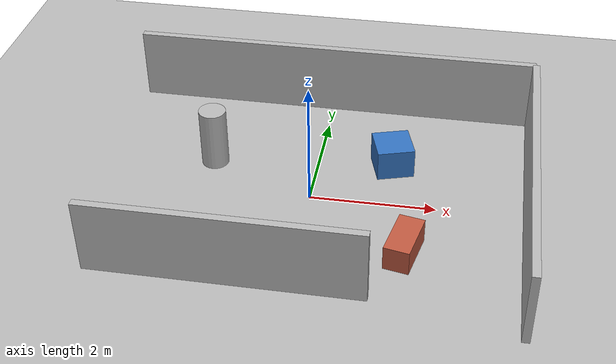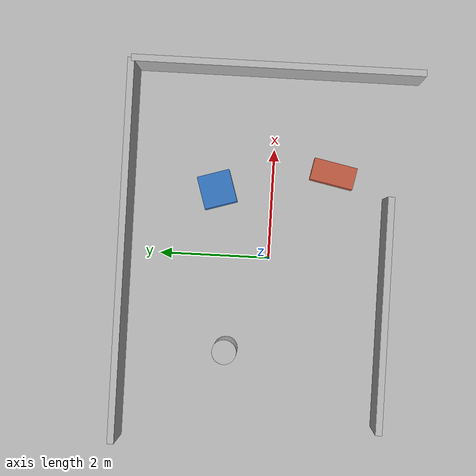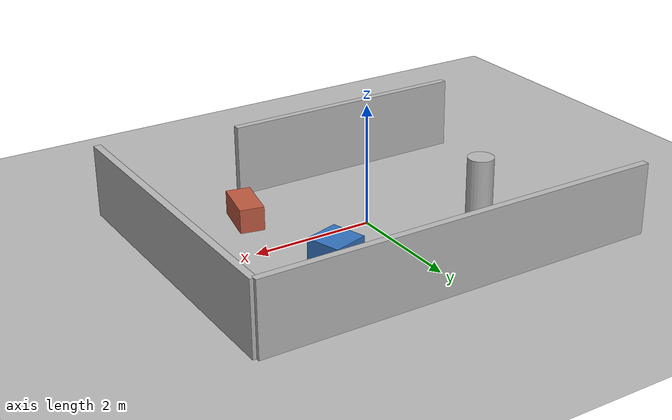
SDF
<?xml version="1.0"?>
<sdf version="1.6">
  <world name="g1_slam_room">
    <plugin name="gazebo_ros_init" filename="libgazebo_ros_init.so"/>
    <plugin name="gazebo_ros_factory" filename="libgazebo_ros_factory.so"/>

    <gravity>0 0 -9.8</gravity>

    <include>
      <uri>model://sun</uri>
    </include>

    <model name="ground_plane">
      <static>true</static>
      <link name="link">
        <collision name="collision">
          <geometry>
            <plane>
              <normal>0 0 1</normal>
              <size>12 12</size>
            </plane>
          </geometry>
        </collision>
        <visual name="visual">
          <geometry>
            <plane>
              <normal>0 0 1</normal>
              <size>12 12</size>
            </plane>
          </geometry>
          <material>
            <ambient>0.72 0.72 0.72 1</ambient>
            <diffuse>0.72 0.72 0.72 1</diffuse>
          </material>
        </visual>
      </link>
    </model>

    <model name="front_wall">
      <static>true</static>
      <pose>3.4 0 0.6 0 0 0</pose>
      <link name="link">
        <collision name="collision"><geometry><box><size>0.12 5.2 1.2</size></box></geometry></collision>
        <visual name="visual"><geometry><box><size>0.12 5.2 1.2</size></box></geometry></visual>
      </link>
    </model>

    <model name="left_wall">
      <static>true</static>
      <pose>0 2.6 0.6 0 0 0</pose>
      <link name="link">
        <collision name="collision"><geometry><box><size>6.8 0.12 1.2</size></box></geometry></collision>
        <visual name="visual"><geometry><box><size>6.8 0.12 1.2</size></box></geometry></visual>
      </link>
    </model>

    <model name="right_wall_short">
      <static>true</static>
      <pose>-0.9 -2.1 0.6 0 0 0</pose>
      <link name="link">
        <collision name="collision"><geometry><box><size>4.2 0.12 1.2</size></box></geometry></collision>
        <visual name="visual"><geometry><box><size>4.2 0.12 1.2</size></box></geometry></visual>
      </link>
    </model>

    <model name="left_box">
      <static>true</static>
      <pose>1.2 1.0 0.25 0 0 0.3</pose>
      <link name="link">
        <collision name="collision"><geometry><box><size>0.6 0.6 0.5</size></box></geometry></collision>
        <visual name="visual">
          <geometry><box><size>0.6 0.6 0.5</size></box></geometry>
          <material><ambient>0.2 0.45 0.75 1</ambient><diffuse>0.2 0.45 0.75 1</diffuse></material>
        </visual>
      </link>
    </model>

    <model name="right_box">
      <static>true</static>
      <pose>1.6 -1.1 0.2 0 0 -0.2</pose>
      <link name="link">
        <collision name="collision"><geometry><box><size>0.4 0.8 0.4</size></box></geometry></collision>
        <visual name="visual">
          <geometry><box><size>0.4 0.8 0.4</size></box></geometry>
          <material><ambient>0.75 0.35 0.25 1</ambient><diffuse>0.75 0.35 0.25 1</diffuse></material>
        </visual>
      </link>
    </model>

    <model name="pillar">
      <static>true</static>
      <pose>-1.7 0.7 0.5 0 0 0</pose>
      <link name="link">
        <collision name="collision"><geometry><cylinder><radius>0.22</radius><length>1.0</length></cylinder></geometry></collision>
        <visual name="visual"><geometry><cylinder><radius>0.22</radius><length>1.0</length></cylinder></geometry></visual>
      </link>
    </model>
  </world>
</sdf>
